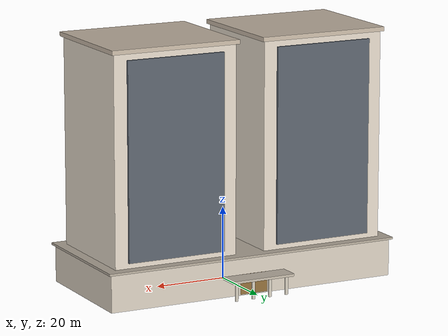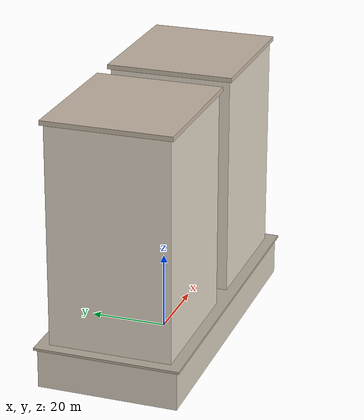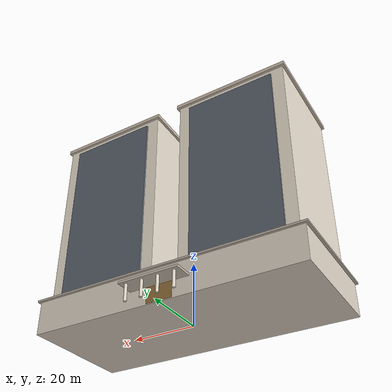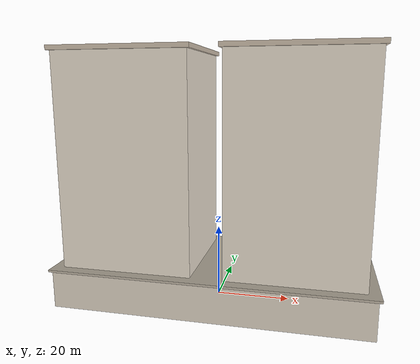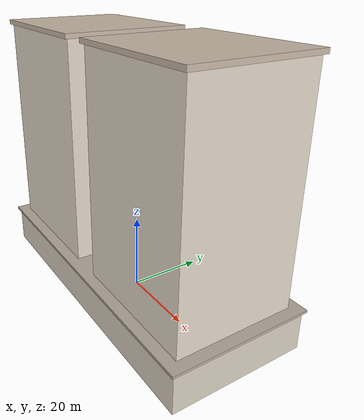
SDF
<?xml version="1.0" ?>
<sdf version="1.8">
  <model name="yipin_daguan_complex">
    <static>true</static>
    <link name="yipin_link">

      <!-- ==================== 物理碰撞剛體 ==================== -->
      <!-- 1F~3F 厚重崗石基座與退縮裙樓 -->
      <collision name="podium_col">
        <pose>0 0 5.25 0 0 0</pose>
        <geometry><box><size>84.0 36.0 10.5</size></box></geometry>
      </collision>

      <!-- 南翼主塔 (22層樓, 高 68m) -->
      <collision name="tower_s_col">
        <pose>-22.0 0 39.25 0 0 0</pose>
        <geometry><box><size>36.0 32.0 57.5</size></box></geometry>
      </collision>

      <!-- 北翼主塔 (22層樓, 高 68m) -->
      <collision name="tower_n_col">
        <pose>22.0 0 39.25 0 0 0</pose>
        <geometry><box><size>36.0 32.0 57.5</size></box></geometry>
      </collision>

      <!-- 迎賓車道大門雨遮碰撞剛體 -->
      <collision name="porte_cochere_col">
        <pose>0 19.5 2.8 0 0 0</pose>
        <geometry><box><size>18.0 7.0 5.6</size></box></geometry>
      </collision>

      <!-- ==================== 視覺呈現：新古典石材厚重基座 (Neoclassical Rusticated Stone) ==================== -->
      <visual name="podium_vis">
        <pose>0 0 5.25 0 0 0</pose>
        <geometry><box><size>84.0 36.0 10.5</size></box></geometry>
        <material>
          <ambient>0.78 0.74 0.68 1</ambient>
          <diffuse>0.84 0.80 0.74 1</diffuse>
        </material>
      </visual>

      <!-- 基座水平分段飾條 (Belt Courses & Entablature) -->
      <visual name="podium_belt">
        <pose>0 0 10.5 0 0 0</pose>
        <geometry><box><size>85.5 37.5 0.6</size></box></geometry>
        <material><ambient>0.65 0.60 0.55 1</ambient><diffuse>0.72 0.68 0.62 1</diffuse></material>
      </visual>

      <!-- ==================== 迎賓挑高大門與迎賓車道大迴廊 (Porte-Cochère) ==================== -->
      <visual name="porte_roof">
        <pose>0 20.0 5.4 0 0 0</pose>
        <geometry><box><size>18.5 7.5 0.7</size></box></geometry>
        <material><ambient>0.70 0.66 0.60 1</ambient><diffuse>0.76 0.72 0.66 1</diffuse></material>
      </visual>

      <!-- 新古典羅馬愛奧尼克/多立克式石雕圓柱 (Classical Columns: 4 根迎賓巨柱) -->
      <visual name="porte_col_1"><pose>-7.5 22.5 2.5 0 0 0</pose><geometry><cylinder><radius>0.45</radius><length>5.0</length></cylinder></geometry><material><ambient>0.8 0.76 0.7 1</ambient><diffuse>0.85 0.82 0.76 1</diffuse></material></visual>
      <visual name="porte_col_2"><pose>-2.5 22.5 2.5 0 0 0</pose><geometry><cylinder><radius>0.45</radius><length>5.0</length></cylinder></geometry><material><ambient>0.8 0.76 0.7 1</ambient><diffuse>0.85 0.82 0.76 1</diffuse></material></visual>
      <visual name="porte_col_3"><pose>2.5 22.5 2.5 0 0 0</pose><geometry><cylinder><radius>0.45</radius><length>5.0</length></cylinder></geometry><material><ambient>0.8 0.76 0.7 1</ambient><diffuse>0.85 0.82 0.76 1</diffuse></material></visual>
      <visual name="porte_col_4"><pose>7.5 22.5 2.5 0 0 0</pose><geometry><cylinder><radius>0.45</radius><length>5.0</length></cylinder></geometry><material><ambient>0.8 0.76 0.7 1</ambient><diffuse>0.85 0.82 0.76 1</diffuse></material></visual>

      <!-- 豪宅挑高鍍鈦迎賓雙開銅門 (Bronze Entrance Portal) -->
      <visual name="bronze_doors">
        <pose>0 18.05 3.0 0 0 0</pose>
        <geometry><box><size>8.0 0.1 5.5</size></box></geometry>
        <material><ambient>0.45 0.35 0.18 1</ambient><diffuse>0.55 0.42 0.22 1</diffuse><specular>0.7 0.6 0.3 1</specular></material>
      </visual>

      <!-- ==================== 南北雙塔主體與經典窗格 (Towers & Classical Casements) ==================== -->
      <!-- 南塔主牆 (溫潤暖黃石材崗石外觀) -->
      <visual name="tower_s_main">
        <pose>-22.0 0 39.25 0 0 0</pose>
        <geometry><box><size>35.5 31.5 57.5</size></box></geometry>
        <material>
          <ambient>0.82 0.78 0.72 1</ambient>
          <diffuse>0.88 0.84 0.78 1</diffuse>
        </material>
      </visual>

      <!-- 北塔主牆 -->
      <visual name="tower_n_main">
        <pose>22.0 0 39.25 0 0 0</pose>
        <geometry><box><size>35.5 31.5 57.5</size></box></geometry>
        <material>
          <ambient>0.82 0.78 0.72 1</ambient>
          <diffuse>0.88 0.84 0.78 1</diffuse>
        </material>
      </visual>

      <!-- 新古典深凹窗與法式露台 (Balconies with Classical Balusters) -->
      <visual name="balconies_s_vis">
        <pose>-22.0 16.0 39.25 0 0 0</pose>
        <geometry><box><size>28.0 0.8 54.0</size></box></geometry>
        <material><ambient>0.3 0.32 0.35 0.9</ambient><diffuse>0.35 0.38 0.42 0.9</diffuse></material>
      </visual>
      <visual name="balconies_n_vis">
        <pose>22.0 16.0 39.25 0 0 0</pose>
        <geometry><box><size>28.0 0.8 54.0</size></box></geometry>
        <material><ambient>0.3 0.32 0.35 0.9</ambient><diffuse>0.35 0.38 0.42 0.9</diffuse></material>
      </visual>

      <!-- ==================== 頂部新古典飛簷與石雕天際線 (Classical Cornice Crown) ==================== -->
      <visual name="cornice_s">
        <pose>-22.0 0 68.6 0 0 0</pose>
        <geometry><box><size>37.0 33.0 1.2</size></box></geometry>
        <material><ambient>0.70 0.65 0.58 1</ambient><diffuse>0.78 0.72 0.65 1</diffuse></material>
      </visual>
      <visual name="cornice_n">
        <pose>22.0 0 68.6 0 0 0</pose>
        <geometry><box><size>37.0 33.0 1.2</size></box></geometry>
        <material><ambient>0.70 0.65 0.58 1</ambient><diffuse>0.78 0.72 0.65 1</diffuse></material>
      </visual>

    </link>
  </model>
</sdf>
